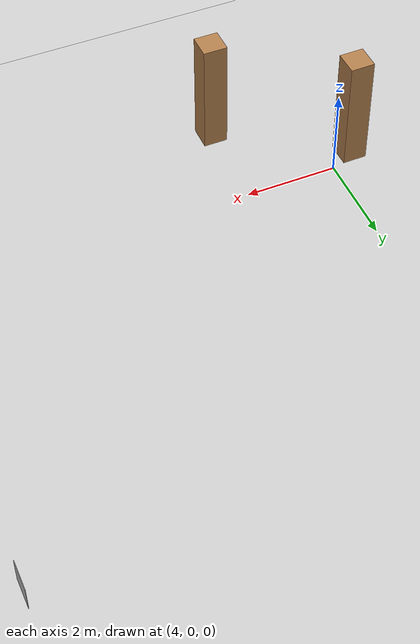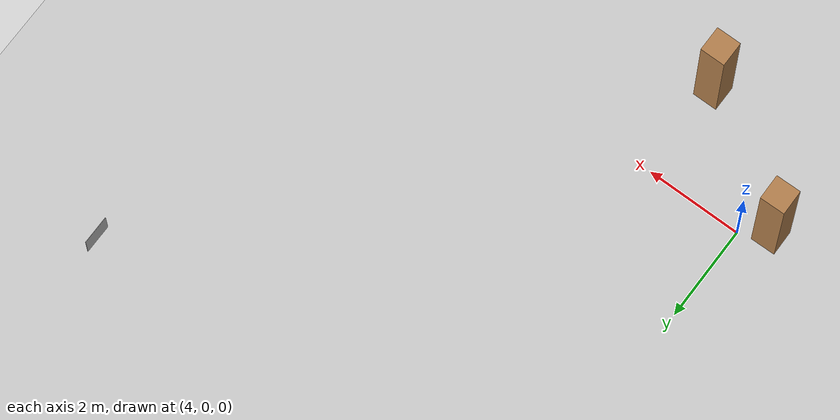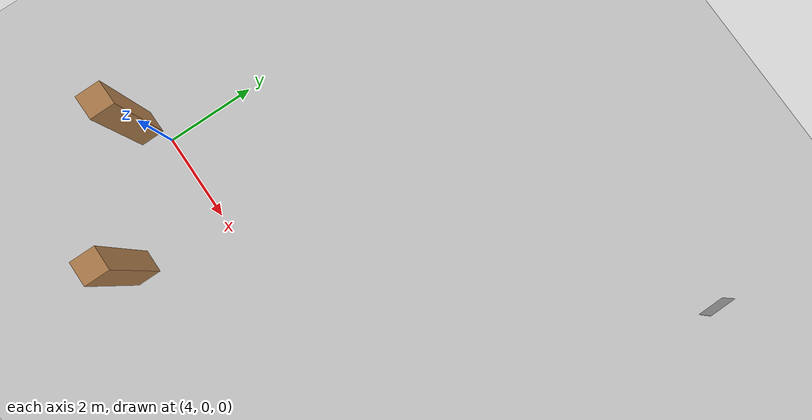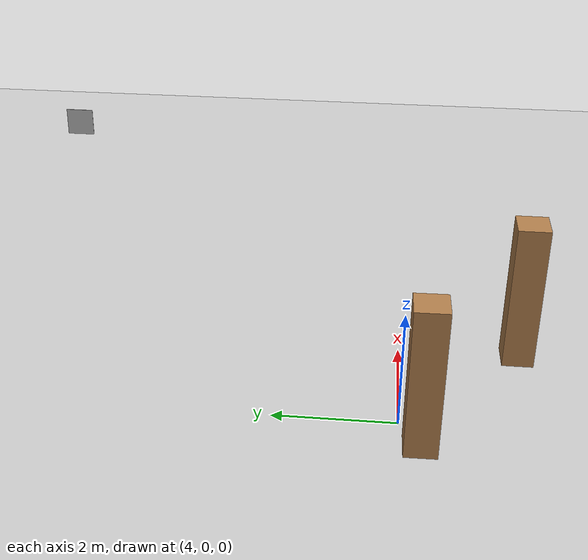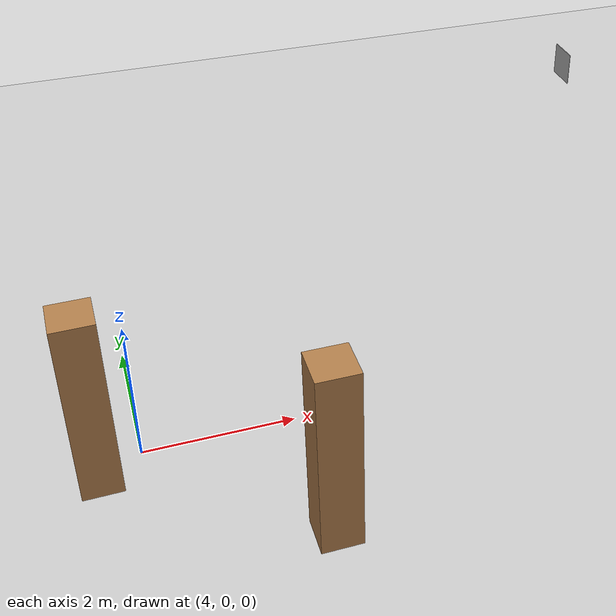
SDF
<sdf version="1.7">
 <world name="default">
  <model name="ground_plane">
   <static>1</static>
   <link name="link">
    <collision name="collision">
     <geometry><plane><normal>0 0 1</normal><size>25 25</size></plane></geometry>
     <surface><friction><ode><mu>100</mu><mu2>50</mu2></ode></friction></surface>
    </collision>
    <visual name="visual">
     <cast_shadows>0</cast_shadows>
     <geometry><plane><normal>0 0 1</normal><size>25 25</size></plane></geometry>
     <material>
      <script><uri>file://media/materials/scripts/gazebo.material</uri><name>Gazebo/Grey</name></script>
     </material>
    </visual>
   </link>
  </model>
  <model name="unit_box_0_clone">
   <pose>3.46103 -0.330293 1.29125 1e-06 -1e-06 0.014174</pose>
   <link name="link">
    <inertial>
     <mass>1</mass>
     <inertia>
      <ixx>0.166667</ixx>
      <ixy>0</ixy>
      <ixz>0</ixz>
      <iyy>0.166667</iyy>
      <iyz>0</iyz>
      <izz>0.166667</izz>
     </inertia>
    </inertial>
    <collision name="collision"><geometry><box><size>0.52404 0.528614 2.5825</size></box></geometry></collision>
    <visual name="visual">
     <geometry><box><size>0.52404 0.528614 2.5825</size></box></geometry>
     <material>
      <script><uri>file://media/materials/scripts/gazebo.material</uri><name>Gazebo/Wood</name></script>
     </material>
    </visual>
   </link>
   <static>0</static>
  </model>
  <model name="static_apriltag_2">
   <link name="link">
    <pose>0 0 0 0 1.57 0</pose>
    <inertial>
     <mass>0.39</mass>
     <inertia><ixx>0.00058</ixx><ixy>0</ixy><ixz>0</ixz><iyy>0.00058</iyy><iyz>0</iyz><izz>0.00019</izz></inertia>
    </inertial>
    <collision name="collision"><geometry><box><size>0.6 0.6 0.01</size></box></geometry></collision>
    <visual name="visual">
     <geometry><box><size>0.6 0.6 0.01</size></box></geometry>
     <material>
      <script>
       <uri>model://apriltag/materials/scripts</uri>
       <uri>model://apriltag/materials/textures</uri>
       <name>apriltag/Diffuse2</name>
      </script>
     </material>
    </visual>
    <gravity>0</gravity>
   </link>
   <pose>13.3973 7.37415 0.8 0.0 0.0 0.0</pose>
   <static>1</static>
   <pose>0.80811 0.829943 0 0 -0 0</pose>
  </model>
  <model name="unit_box_0_clone_3_clone">
   <pose>6 -2 1.29125 1e-06 -1e-06 0.000842</pose>
   <link name="link">
    <inertial>
     <mass>1</mass>
     <inertia>
      <ixx>0.166667</ixx>
      <ixy>0</ixy>
      <ixz>0</ixz>
      <iyy>0.166667</iyy>
      <iyz>0</iyz>
      <izz>0.166667</izz>
     </inertia>
    </inertial>
    <collision name="collision"><geometry><box><size>0.52404 0.528614 2.5825</size></box></geometry></collision>
    <visual name="visual">
     <geometry><box><size>0.52404 0.528614 2.5825</size></box></geometry>
     <material>
      <script><uri>file://media/materials/scripts/gazebo.material</uri><name>Gazebo/Wood</name></script>
     </material>
    </visual>
   </link>
   <static>0</static>
  </model>
 </world>
</sdf>
